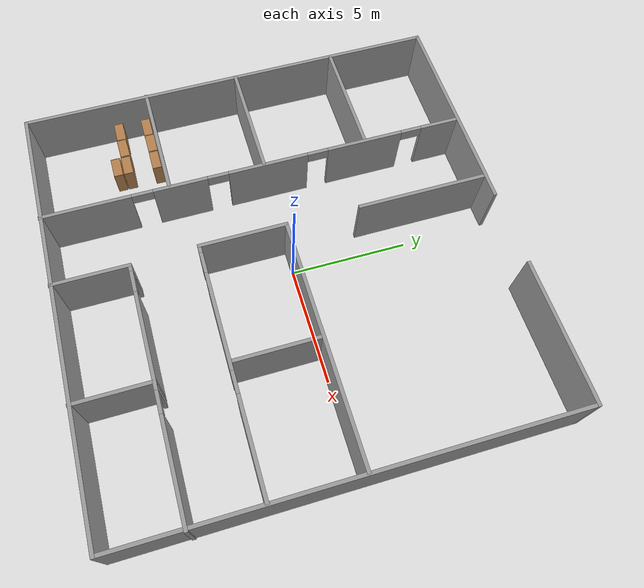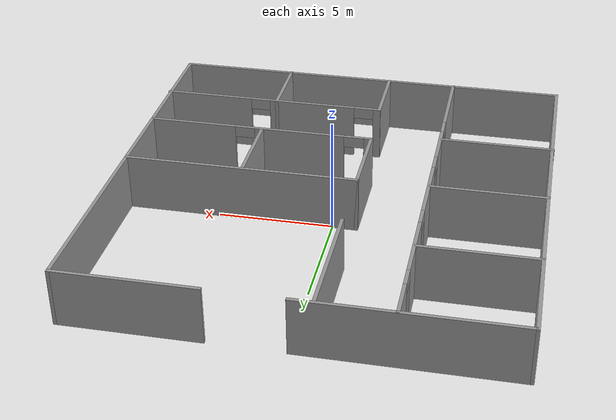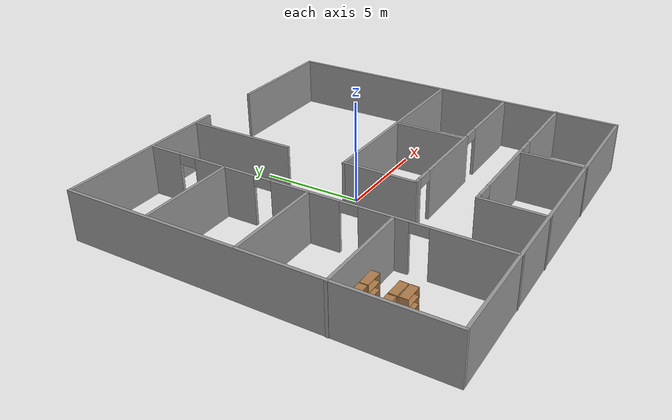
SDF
<sdf version="1.7">
 <world name="default">
  <model name="Clinic_Plan">
   <pose>0.061971 -0.423172 0 0 -0 0</pose>
   <link name="Wall_11">
    <pose>-4.13749 -0.011198 0 0 -0 -1.5708</pose>
    <visual name="Wall_11_Visual_0">
     <pose>-8.24062 0 1.25 0 -0 0</pose>
     <geometry><box><size>1.76876 0.15 2.5</size></box></geometry>
     <material>
      <script><uri>file://media/materials/scripts/gazebo.material</uri><name>Gazebo/Grey</name></script>
      <ambient>1 1 1 1</ambient>
     </material>
     <meta><layer>0</layer></meta>
    </visual>
    <collision name="Wall_11_Collision_0">
     <geometry><box><size>1.76876 0.15 2.5</size></box></geometry>
     <pose>-8.24062 0 1.25 0 -0 0</pose>
    </collision>
    <visual name="Wall_11_Visual_1">
     <pose>-4.80135 0 1.25 0 -0 0</pose>
     <geometry><box><size>3.30977 0.15 2.5</size></box></geometry>
     <material>
      <script><uri>file://media/materials/scripts/gazebo.material</uri><name>Gazebo/Grey</name></script>
      <ambient>1 1 1 1</ambient>
     </material>
     <meta><layer>0</layer></meta>
    </visual>
    <collision name="Wall_11_Collision_1">
     <geometry><box><size>3.30977 0.15 2.5</size></box></geometry>
     <pose>-4.80135 0 1.25 0 -0 0</pose>
    </collision>
    <visual name="Wall_11_Visual_2">
     <pose>-0.522188 0 1.25 0 -0 0</pose>
     <geometry><box><size>3.44855 0.15 2.5</size></box></geometry>
     <material>
      <script><uri>file://media/materials/scripts/gazebo.material</uri><name>Gazebo/Grey</name></script>
      <ambient>1 1 1 1</ambient>
     </material>
     <meta><layer>0</layer></meta>
    </visual>
    <collision name="Wall_11_Collision_2">
     <geometry><box><size>3.44855 0.15 2.5</size></box></geometry>
     <pose>-0.522188 0 1.25 0 -0 0</pose>
    </collision>
    <visual name="Wall_11_Visual_3">
     <pose>3.25967 0 1.25 0 -0 0</pose>
     <geometry><box><size>2.31515 0.15 2.5</size></box></geometry>
     <material>
      <script><uri>file://media/materials/scripts/gazebo.material</uri><name>Gazebo/Grey</name></script>
      <ambient>1 1 1 1</ambient>
     </material>
     <meta><layer>0</layer></meta>
    </visual>
    <collision name="Wall_11_Collision_3">
     <geometry><box><size>2.31515 0.15 2.5</size></box></geometry>
     <pose>3.25967 0 1.25 0 -0 0</pose>
    </collision>
    <visual name="Wall_11_Visual_4">
     <pose>7.22112 0 1.25 0 -0 0</pose>
     <geometry><box><size>3.80776 0.15 2.5</size></box></geometry>
     <material>
      <script><uri>file://media/materials/scripts/gazebo.material</uri><name>Gazebo/Grey</name></script>
      <ambient>1 1 1 1</ambient>
     </material>
     <meta><layer>0</layer></meta>
    </visual>
    <collision name="Wall_11_Collision_4">
     <geometry><box><size>3.80776 0.15 2.5</size></box></geometry>
     <pose>7.22112 0 1.25 0 -0 0</pose>
    </collision>
    <visual name="Wall_11_Visual_5">
     <pose>-6.90624 0 2.25 0 -0 0</pose>
     <geometry><box><size>0.9 0.15 0.5</size></box></geometry>
     <material>
      <script><uri>file://media/materials/scripts/gazebo.material</uri><name>Gazebo/Grey</name></script>
      <ambient>1 1 1 1</ambient>
     </material>
     <meta><layer>0</layer></meta>
    </visual>
    <collision name="Wall_11_Collision_5">
     <geometry><box><size>0.9 0.15 0.5</size></box></geometry>
     <pose>-6.90624 0 2.25 0 -0 0</pose>
    </collision>
    <visual name="Wall_11_Visual_6">
     <pose>-2.69646 0 2.25 0 -0 0</pose>
     <geometry><box><size>0.9 0.15 0.5</size></box></geometry>
     <material>
      <script><uri>file://media/materials/scripts/gazebo.material</uri><name>Gazebo/Grey</name></script>
      <ambient>1 1 1 1</ambient>
     </material>
     <meta><layer>0</layer></meta>
    </visual>
    <collision name="Wall_11_Collision_6">
     <geometry><box><size>0.9 0.15 0.5</size></box></geometry>
     <pose>-2.69646 0 2.25 0 -0 0</pose>
    </collision>
    <visual name="Wall_11_Visual_7">
     <pose>1.65209 0 2.25 0 -0 0</pose>
     <geometry><box><size>0.9 0.15 0.5</size></box></geometry>
     <material>
      <script><uri>file://media/materials/scripts/gazebo.material</uri><name>Gazebo/Grey</name></script>
      <ambient>1 1 1 1</ambient>
     </material>
     <meta><layer>0</layer></meta>
    </visual>
    <collision name="Wall_11_Collision_7">
     <geometry><box><size>0.9 0.15 0.5</size></box></geometry>
     <pose>1.65209 0 2.25 0 -0 0</pose>
    </collision>
    <visual name="Wall_11_Visual_8">
     <pose>4.86724 0 2.25 0 -0 0</pose>
     <geometry><box><size>0.9 0.15 0.5</size></box></geometry>
     <material>
      <script><uri>file://media/materials/scripts/gazebo.material</uri><name>Gazebo/Grey</name></script>
      <ambient>1 1 1 1</ambient>
     </material>
     <meta><layer>0</layer></meta>
    </visual>
    <collision name="Wall_11_Collision_8">
     <geometry><box><size>0.9 0.15 0.5</size></box></geometry>
     <pose>4.86724 0 2.25 0 -0 0</pose>
    </collision>
   </link>
   <link name="Wall_15">
    <collision name="Wall_15_Collision">
     <geometry><box><size>5 0.15 2.5</size></box></geometry>
     <pose>0 0 1.25 0 -0 0</pose>
    </collision>
    <visual name="Wall_15_Visual">
     <pose>0 0 1.25 0 -0 0</pose>
     <geometry><box><size>5 0.15 2.5</size></box></geometry>
     <material>
      <script><uri>file://media/materials/scripts/gazebo.material</uri><name>Gazebo/Grey</name></script>
      <ambient>1 1 1 1</ambient>
     </material>
     <meta><layer>0</layer></meta>
    </visual>
    <pose>-6.62954 4.79703 0 0 -0 0</pose>
   </link>
   <link name="Wall_17">
    <collision name="Wall_17_Collision">
     <geometry><box><size>5 0.15 2.5</size></box></geometry>
     <pose>0 0 1.25 0 -0 0</pose>
    </collision>
    <visual name="Wall_17_Visual">
     <pose>0 0 1.25 0 -0 0</pose>
     <geometry><box><size>5 0.15 2.5</size></box></geometry>
     <material>
      <script><uri>file://media/materials/scripts/gazebo.material</uri><name>Gazebo/Grey</name></script>
      <ambient>1 1 1 1</ambient>
     </material>
     <meta><layer>0</layer></meta>
    </visual>
    <pose>-6.62954 0.330853 0 0 -0 0</pose>
   </link>
   <link name="Wall_19">
    <collision name="Wall_19_Collision">
     <geometry><box><size>5 0.15 2.5</size></box></geometry>
     <pose>0 0 1.25 0 -0 0</pose>
    </collision>
    <visual name="Wall_19_Visual">
     <pose>0 0 1.25 0 -0 0</pose>
     <geometry><box><size>5 0.15 2.5</size></box></geometry>
     <material>
      <script><uri>file://media/materials/scripts/gazebo.material</uri><name>Gazebo/Grey</name></script>
      <ambient>1 1 1 1</ambient>
     </material>
     <meta><layer>0</layer></meta>
    </visual>
    <pose>-6.66013 -3.73765 0 0 -0 0</pose>
   </link>
   <link name="Wall_22">
    <collision name="Wall_22_Collision">
     <geometry><box><size>3.25 0.15 2.5</size></box></geometry>
     <pose>0 0 1.25 0 -0 0</pose>
    </collision>
    <visual name="Wall_22_Visual">
     <pose>0 0 1.25 0 -0 0</pose>
     <geometry><box><size>3.25 0.15 2.5</size></box></geometry>
     <material>
      <script><uri>file://media/materials/scripts/gazebo.material</uri><name>Gazebo/Grey</name></script>
      <ambient>1 1 1 1</ambient>
     </material>
     <meta><layer>0</layer></meta>
    </visual>
    <pose>-1.0264 -7.51474 0 0 -0 1.5708</pose>
   </link>
   <link name="Wall_3">
    <collision name="Wall_3_Collision">
     <geometry><box><size>18.25 0.15 2.5</size></box></geometry>
     <pose>0 0 1.25 0 -0 0</pose>
    </collision>
    <visual name="Wall_3_Visual">
     <pose>0 0 1.25 0 -0 0</pose>
     <geometry><box><size>18.25 0.15 2.5</size></box></geometry>
     <material>
      <script><uri>file://media/materials/scripts/gazebo.material</uri><name>Gazebo/Grey</name></script>
      <ambient>1 1 1 1</ambient>
     </material>
     <meta><layer>0</layer></meta>
    </visual>
    <pose>-9.0597 0.014737 0 0 -0 -1.5708</pose>
   </link>
   <link name="Wall_32">
    <pose>4.03513 -5.96146 0 0 -0 0</pose>
    <visual name="Wall_32_Visual_0">
     <pose>-4.9534 0 1.25 0 -0 0</pose>
     <geometry><box><size>0.343205 0.15 2.5</size></box></geometry>
     <material>
      <script><uri>file://media/materials/scripts/gazebo.material</uri><name>Gazebo/Grey</name></script>
      <ambient>1 1 1 1</ambient>
     </material>
     <meta><layer>0</layer></meta>
    </visual>
    <collision name="Wall_32_Collision_0">
     <geometry><box><size>0.343205 0.15 2.5</size></box></geometry>
     <pose>-4.9534 0 1.25 0 -0 0</pose>
    </collision>
    <visual name="Wall_32_Visual_1">
     <pose>-1.87128 0 1.25 0 -0 0</pose>
     <geometry><box><size>4.02104 0.15 2.5</size></box></geometry>
     <material>
      <script><uri>file://media/materials/scripts/gazebo.material</uri><name>Gazebo/Grey</name></script>
      <ambient>1 1 1 1</ambient>
     </material>
     <meta><layer>0</layer></meta>
    </visual>
    <collision name="Wall_32_Collision_1">
     <geometry><box><size>4.02104 0.15 2.5</size></box></geometry>
     <pose>-1.87128 0 1.25 0 -0 0</pose>
    </collision>
    <visual name="Wall_32_Visual_2">
     <pose>3.08212 0 1.25 0 -0 0</pose>
     <geometry><box><size>4.08576 0.15 2.5</size></box></geometry>
     <material>
      <script><uri>file://media/materials/scripts/gazebo.material</uri><name>Gazebo/Grey</name></script>
      <ambient>1 1 1 1</ambient>
     </material>
     <meta><layer>0</layer></meta>
    </visual>
    <collision name="Wall_32_Collision_2">
     <geometry><box><size>4.08576 0.15 2.5</size></box></geometry>
     <pose>3.08212 0 1.25 0 -0 0</pose>
    </collision>
    <visual name="Wall_32_Visual_3">
     <pose>-4.33179 0 2.25 0 -0 0</pose>
     <geometry><box><size>0.9 0.15 0.5</size></box></geometry>
     <material>
      <script><uri>file://media/materials/scripts/gazebo.material</uri><name>Gazebo/Grey</name></script>
      <ambient>1 1 1 1</ambient>
     </material>
     <meta><layer>0</layer></meta>
    </visual>
    <collision name="Wall_32_Collision_3">
     <geometry><box><size>0.9 0.15 0.5</size></box></geometry>
     <pose>-4.33179 0 2.25 0 -0 0</pose>
    </collision>
    <visual name="Wall_32_Visual_4">
     <pose>0.589242 0 2.25 0 -0 0</pose>
     <geometry><box><size>0.9 0.15 0.5</size></box></geometry>
     <material>
      <script><uri>file://media/materials/scripts/gazebo.material</uri><name>Gazebo/Grey</name></script>
      <ambient>1 1 1 1</ambient>
     </material>
     <meta><layer>0</layer></meta>
    </visual>
    <collision name="Wall_32_Collision_4">
     <geometry><box><size>0.9 0.15 0.5</size></box></geometry>
     <pose>0.589242 0 2.25 0 -0 0</pose>
    </collision>
   </link>
   <link name="Wall_34">
    <pose>3.93681 -3.16844 0 0 -0 3.14159</pose>
    <visual name="Wall_34_Visual_0">
     <pose>-3.15181 0 1.25 0 -0 0</pose>
     <geometry><box><size>3.94638 0.15 2.5</size></box></geometry>
     <material>
      <script><uri>file://media/materials/scripts/gazebo.material</uri><name>Gazebo/Grey</name></script>
      <ambient>1 1 1 1</ambient>
     </material>
     <meta><layer>0</layer></meta>
    </visual>
    <collision name="Wall_34_Collision_0">
     <geometry><box><size>3.94638 0.15 2.5</size></box></geometry>
     <pose>-3.15181 0 1.25 0 -0 0</pose>
    </collision>
    <visual name="Wall_34_Visual_1">
     <pose>1.77322 0 1.25 0 -0 0</pose>
     <geometry><box><size>4.10368 0.15 2.5</size></box></geometry>
     <material>
      <script><uri>file://media/materials/scripts/gazebo.material</uri><name>Gazebo/Grey</name></script>
      <ambient>1 1 1 1</ambient>
     </material>
     <meta><layer>0</layer></meta>
    </visual>
    <collision name="Wall_34_Collision_1">
     <geometry><box><size>4.10368 0.15 2.5</size></box></geometry>
     <pose>1.77322 0 1.25 0 -0 0</pose>
    </collision>
    <visual name="Wall_34_Visual_2">
     <pose>4.92503 0 1.25 0 -0 0</pose>
     <geometry><box><size>0.399938 0.15 2.5</size></box></geometry>
     <material>
      <script><uri>file://media/materials/scripts/gazebo.material</uri><name>Gazebo/Grey</name></script>
      <ambient>1 1 1 1</ambient>
     </material>
     <meta><layer>0</layer></meta>
    </visual>
    <collision name="Wall_34_Collision_2">
     <geometry><box><size>0.399938 0.15 2.5</size></box></geometry>
     <pose>4.92503 0 1.25 0 -0 0</pose>
    </collision>
    <visual name="Wall_34_Visual_3">
     <pose>-0.728617 0 2.25 0 -0 0</pose>
     <geometry><box><size>0.9 0.15 0.5</size></box></geometry>
     <material>
      <script><uri>file://media/materials/scripts/gazebo.material</uri><name>Gazebo/Grey</name></script>
      <ambient>1 1 1 1</ambient>
     </material>
     <meta><layer>0</layer></meta>
    </visual>
    <collision name="Wall_34_Collision_3">
     <geometry><box><size>0.9 0.15 0.5</size></box></geometry>
     <pose>-0.728617 0 2.25 0 -0 0</pose>
    </collision>
    <visual name="Wall_34_Visual_4">
     <pose>4.27506 0 2.25 0 -0 0</pose>
     <geometry><box><size>0.9 0.15 0.5</size></box></geometry>
     <material>
      <script><uri>file://media/materials/scripts/gazebo.material</uri><name>Gazebo/Grey</name></script>
      <ambient>1 1 1 1</ambient>
     </material>
     <meta><layer>0</layer></meta>
    </visual>
    <collision name="Wall_34_Collision_4">
     <geometry><box><size>0.9 0.15 0.5</size></box></geometry>
     <pose>4.27506 0 2.25 0 -0 0</pose>
    </collision>
   </link>
   <link name="Wall_36">
    <collision name="Wall_36_Collision">
     <geometry><box><size>3.25 0.15 2.5</size></box></geometry>
     <pose>0 0 1.25 0 -0 0</pose>
    </collision>
    <visual name="Wall_36_Visual">
     <pose>0 0 1.25 0 -0 0</pose>
     <geometry><box><size>3.25 0.15 2.5</size></box></geometry>
     <material>
      <script><uri>file://media/materials/scripts/gazebo.material</uri><name>Gazebo/Grey</name></script>
      <ambient>1 1 1 1</ambient>
     </material>
     <meta><layer>0</layer></meta>
    </visual>
    <pose>3.84891 -7.50761 0 0 -0 -1.5708</pose>
   </link>
   <link name="Wall_38">
    <collision name="Wall_38_Collision">
     <geometry><box><size>10.25 0.15 2.5</size></box></geometry>
     <pose>0 0 1.25 0 -0 0</pose>
    </collision>
    <visual name="Wall_38_Visual">
     <pose>0 0 1.25 0 -0 0</pose>
     <geometry><box><size>10.25 0.15 2.5</size></box></geometry>
     <material>
      <script><uri>file://media/materials/scripts/gazebo.material</uri><name>Gazebo/Grey</name></script>
      <ambient>1 1 1 1</ambient>
     </material>
     <meta><layer>0</layer></meta>
    </visual>
    <pose>3.93681 0.431559 0 0 -0 0</pose>
   </link>
   <link name="Wall_40">
    <collision name="Wall_40_Collision">
     <geometry><box><size>3.5 0.15 2.5</size></box></geometry>
     <pose>0 0 1.25 0 -0 0</pose>
    </collision>
    <visual name="Wall_40_Visual">
     <pose>0 0 1.25 0 -0 0</pose>
     <geometry><box><size>3.5 0.15 2.5</size></box></geometry>
     <material>
      <script><uri>file://media/materials/scripts/gazebo.material</uri><name>Gazebo/Grey</name></script>
      <ambient>1 1 1 1</ambient>
     </material>
     <meta><layer>0</layer></meta>
    </visual>
    <pose>3.87146 -1.3505 0 0 -0 1.5708</pose>
   </link>
   <link name="Wall_43">
    <collision name="Wall_43_Collision">
     <geometry><box><size>3.75 0.15 2.5</size></box></geometry>
     <pose>0 0 1.25 0 -0 0</pose>
    </collision>
    <visual name="Wall_43_Visual">
     <pose>0 0 1.25 0 -0 0</pose>
     <geometry><box><size>3.75 0.15 2.5</size></box></geometry>
     <material>
      <script><uri>file://media/materials/scripts/gazebo.material</uri><name>Gazebo/Grey</name></script>
      <ambient>1 1 1 1</ambient>
     </material>
     <meta><layer>0</layer></meta>
    </visual>
    <pose>-1.11319 -1.36844 0 0 -0 -1.5708</pose>
   </link>
   <link name="Wall_46">
    <collision name="Wall_46_Collision">
     <geometry><box><size>5.5 0.15 2.5</size></box></geometry>
     <pose>0 0 1.25 0 -0 0</pose>
    </collision>
    <visual name="Wall_46_Visual">
     <pose>0 0 1.25 0 -0 0</pose>
     <geometry><box><size>5.5 0.15 2.5</size></box></geometry>
     <material>
      <script><uri>file://media/materials/scripts/gazebo.material</uri><name>Gazebo/Grey</name></script>
      <ambient>1 1 1 1</ambient>
     </material>
     <meta><layer>0</layer></meta>
    </visual>
    <pose>-1.07436 6.24221 0 0 -0 1.5708</pose>
   </link>
   <link name="Wall_48">
    <collision name="Wall_48_Collision">
     <geometry><box><size>6 0.15 2.5</size></box></geometry>
     <pose>0 0 1.25 0 -0 0</pose>
    </collision>
    <visual name="Wall_48_Visual">
     <pose>0 0 1.25 0 -0 0</pose>
     <geometry><box><size>6 0.15 2.5</size></box></geometry>
     <material>
      <script><uri>file://media/materials/scripts/gazebo.material</uri><name>Gazebo/Grey</name></script>
      <ambient>1 1 1 1</ambient>
     </material>
     <meta><layer>0</layer></meta>
    </visual>
    <pose>6.1153 9.06474 0 0 -0 3.14159</pose>
   </link>
   <link name="Wall_5">
    <collision name="Wall_5_Collision">
     <geometry><box><size>18.25 0.15 2.5</size></box></geometry>
     <pose>0 0 1.25 0 -0 0</pose>
    </collision>
    <visual name="Wall_5_Visual">
     <pose>0 0 1.25 0 -0 0</pose>
     <geometry><box><size>18.25 0.15 2.5</size></box></geometry>
     <material>
      <script><uri>file://media/materials/scripts/gazebo.material</uri><name>Gazebo/Grey</name></script>
      <ambient>1 1 1 1</ambient>
     </material>
     <meta><layer>0</layer></meta>
    </visual>
    <pose>-0.0097 -9.03526 0 0 -0 0</pose>
   </link>
   <link name="Wall_50">
    <collision name="Wall_50_Collision">
     <geometry><box><size>9 0.15 2.5</size></box></geometry>
     <pose>0 0 1.25 0 -0 0</pose>
    </collision>
    <visual name="Wall_50_Visual">
     <pose>0 0 1.25 0 -0 0</pose>
     <geometry><box><size>9 0.15 2.5</size></box></geometry>
     <material>
      <script><uri>file://media/materials/scripts/gazebo.material</uri><name>Gazebo/Grey</name></script>
      <ambient>1 1 1 1</ambient>
     </material>
     <meta><layer>0</layer></meta>
    </visual>
    <pose>-4.56024 9.06375 0 0 -0 3.14159</pose>
   </link>
   <link name="Wall_6">
    <collision name="Wall_6_Collision">
     <geometry><box><size>18.25 0.15 2.5</size></box></geometry>
     <pose>0 0 1.25 0 -0 0</pose>
    </collision>
    <visual name="Wall_6_Visual">
     <pose>0 0 1.25 0 -0 0</pose>
     <geometry><box><size>18.25 0.15 2.5</size></box></geometry>
     <material>
      <script><uri>file://media/materials/scripts/gazebo.material</uri><name>Gazebo/Grey</name></script>
      <ambient>1 1 1 1</ambient>
     </material>
     <meta><layer>0</layer></meta>
    </visual>
    <pose>9.0403 0.014737 0 0 -0 1.5708</pose>
   </link>
   <static>1</static>
  </model>
  <model name="bookshelf">
   <static>1</static>
   <link name="link">
    <inertial><mass>1</mass></inertial>
    <collision name="back">
     <pose>0 0.005 0.6 0 -0 0</pose>
     <geometry><box><size>0.9 0.01 1.2</size></box></geometry>
    </collision>
    <visual name="visual1">
     <pose>0 0.005 0.6 0 -0 0</pose>
     <geometry><box><size>0.9 0.01 1.2</size></box></geometry>
     <material>
      <script><uri>file://media/materials/scripts/gazebo.material</uri><name>Gazebo/Wood</name></script>
     </material>
    </visual>
    <collision name="left_side">
     <pose>0.45 -0.195 0.6 0 -0 0</pose>
     <geometry><box><size>0.02 0.4 1.2</size></box></geometry>
    </collision>
    <visual name="visual2">
     <pose>0.45 -0.195 0.6 0 -0 0</pose>
     <geometry><box><size>0.02 0.4 1.2</size></box></geometry>
     <material>
      <script><uri>file://media/materials/scripts/gazebo.material</uri><name>Gazebo/Wood</name></script>
     </material>
    </visual>
    <collision name="right_side">
     <pose>-0.45 -0.195 0.6 0 -0 0</pose>
     <geometry><box><size>0.02 0.4 1.2</size></box></geometry>
    </collision>
    <visual name="visual3">
     <pose>-0.45 -0.195 0.6 0 -0 0</pose>
     <geometry><box><size>0.02 0.4 1.2</size></box></geometry>
     <material>
      <script><uri>file://media/materials/scripts/gazebo.material</uri><name>Gazebo/Wood</name></script>
     </material>
    </visual>
    <collision name="bottom">
     <pose>0 -0.195 0.03 0 -0 0</pose>
     <geometry><box><size>0.88 0.4 0.06</size></box></geometry>
    </collision>
    <visual name="visual4">
     <pose>0 -0.195 0.03 0 -0 0</pose>
     <geometry><box><size>0.88 0.4 0.06</size></box></geometry>
     <material>
      <script><uri>file://media/materials/scripts/gazebo.material</uri><name>Gazebo/Wood</name></script>
     </material>
    </visual>
    <collision name="top">
     <pose>0 -0.195 1.19 0 -0 0</pose>
     <geometry><box><size>0.88 0.4 0.02</size></box></geometry>
    </collision>
    <visual name="visual5">
     <pose>0 -0.195 1.19 0 -0 0</pose>
     <geometry><box><size>0.88 0.4 0.02</size></box></geometry>
     <material>
      <script><uri>file://media/materials/scripts/gazebo.material</uri><name>Gazebo/Wood</name></script>
     </material>
    </visual>
    <collision name="low_shelf">
     <pose>0 -0.195 0.43 0 -0 0</pose>
     <geometry><box><size>0.88 0.4 0.02</size></box></geometry>
    </collision>
    <visual name="visual6">
     <pose>0 -0.195 0.43 0 -0 0</pose>
     <geometry><box><size>0.88 0.4 0.02</size></box></geometry>
     <material>
      <script><uri>file://media/materials/scripts/gazebo.material</uri><name>Gazebo/Wood</name></script>
     </material>
    </visual>
    <collision name="high_shelf">
     <pose>0 -0.195 0.8 0 -0 0</pose>
     <geometry><box><size>0.88 0.4 0.02</size></box></geometry>
    </collision>
    <visual name="visual7">
     <pose>0 -0.195 0.8 0 -0 0</pose>
     <geometry><box><size>0.88 0.4 0.02</size></box></geometry>
     <material>
      <script><uri>file://media/materials/scripts/gazebo.material</uri><name>Gazebo/Wood</name></script>
     </material>
    </visual>
   </link>
   <pose>-6.53627 -4.27883 0 0 -0 0</pose>
  </model>
  <model name="bookshelf_0">
   <static>1</static>
   <link name="link">
    <inertial><mass>1</mass></inertial>
    <collision name="back">
     <pose>0 0.005 0.6 0 -0 0</pose>
     <geometry><box><size>0.9 0.01 1.2</size></box></geometry>
    </collision>
    <visual name="visual1">
     <pose>0 0.005 0.6 0 -0 0</pose>
     <geometry><box><size>0.9 0.01 1.2</size></box></geometry>
     <material>
      <script><uri>file://media/materials/scripts/gazebo.material</uri><name>Gazebo/Wood</name></script>
     </material>
    </visual>
    <collision name="left_side">
     <pose>0.45 -0.195 0.6 0 -0 0</pose>
     <geometry><box><size>0.02 0.4 1.2</size></box></geometry>
    </collision>
    <visual name="visual2">
     <pose>0.45 -0.195 0.6 0 -0 0</pose>
     <geometry><box><size>0.02 0.4 1.2</size></box></geometry>
     <material>
      <script><uri>file://media/materials/scripts/gazebo.material</uri><name>Gazebo/Wood</name></script>
     </material>
    </visual>
    <collision name="right_side">
     <pose>-0.45 -0.195 0.6 0 -0 0</pose>
     <geometry><box><size>0.02 0.4 1.2</size></box></geometry>
    </collision>
    <visual name="visual3">
     <pose>-0.45 -0.195 0.6 0 -0 0</pose>
     <geometry><box><size>0.02 0.4 1.2</size></box></geometry>
     <material>
      <script><uri>file://media/materials/scripts/gazebo.material</uri><name>Gazebo/Wood</name></script>
     </material>
    </visual>
    <collision name="bottom">
     <pose>0 -0.195 0.03 0 -0 0</pose>
     <geometry><box><size>0.88 0.4 0.06</size></box></geometry>
    </collision>
    <visual name="visual4">
     <pose>0 -0.195 0.03 0 -0 0</pose>
     <geometry><box><size>0.88 0.4 0.06</size></box></geometry>
     <material>
      <script><uri>file://media/materials/scripts/gazebo.material</uri><name>Gazebo/Wood</name></script>
     </material>
    </visual>
    <collision name="top">
     <pose>0 -0.195 1.19 0 -0 0</pose>
     <geometry><box><size>0.88 0.4 0.02</size></box></geometry>
    </collision>
    <visual name="visual5">
     <pose>0 -0.195 1.19 0 -0 0</pose>
     <geometry><box><size>0.88 0.4 0.02</size></box></geometry>
     <material>
      <script><uri>file://media/materials/scripts/gazebo.material</uri><name>Gazebo/Wood</name></script>
     </material>
    </visual>
    <collision name="low_shelf">
     <pose>0 -0.195 0.43 0 -0 0</pose>
     <geometry><box><size>0.88 0.4 0.02</size></box></geometry>
    </collision>
    <visual name="visual6">
     <pose>0 -0.195 0.43 0 -0 0</pose>
     <geometry><box><size>0.88 0.4 0.02</size></box></geometry>
     <material>
      <script><uri>file://media/materials/scripts/gazebo.material</uri><name>Gazebo/Wood</name></script>
     </material>
    </visual>
    <collision name="high_shelf">
     <pose>0 -0.195 0.8 0 -0 0</pose>
     <geometry><box><size>0.88 0.4 0.02</size></box></geometry>
    </collision>
    <visual name="visual7">
     <pose>0 -0.195 0.8 0 -0 0</pose>
     <geometry><box><size>0.88 0.4 0.02</size></box></geometry>
     <material>
      <script><uri>file://media/materials/scripts/gazebo.material</uri><name>Gazebo/Wood</name></script>
     </material>
    </visual>
   </link>
   <pose>-7.47578 -4.27956 0 0 -0 0</pose>
  </model>
  <model name="bookshelf_1">
   <static>1</static>
   <link name="link">
    <inertial><mass>1</mass></inertial>
    <collision name="back">
     <pose>0 0.005 0.6 0 -0 0</pose>
     <geometry><box><size>0.9 0.01 1.2</size></box></geometry>
    </collision>
    <visual name="visual1">
     <pose>0 0.005 0.6 0 -0 0</pose>
     <geometry><box><size>0.9 0.01 1.2</size></box></geometry>
     <material>
      <script><uri>file://media/materials/scripts/gazebo.material</uri><name>Gazebo/Wood</name></script>
     </material>
    </visual>
    <collision name="left_side">
     <pose>0.45 -0.195 0.6 0 -0 0</pose>
     <geometry><box><size>0.02 0.4 1.2</size></box></geometry>
    </collision>
    <visual name="visual2">
     <pose>0.45 -0.195 0.6 0 -0 0</pose>
     <geometry><box><size>0.02 0.4 1.2</size></box></geometry>
     <material>
      <script><uri>file://media/materials/scripts/gazebo.material</uri><name>Gazebo/Wood</name></script>
     </material>
    </visual>
    <collision name="right_side">
     <pose>-0.45 -0.195 0.6 0 -0 0</pose>
     <geometry><box><size>0.02 0.4 1.2</size></box></geometry>
    </collision>
    <visual name="visual3">
     <pose>-0.45 -0.195 0.6 0 -0 0</pose>
     <geometry><box><size>0.02 0.4 1.2</size></box></geometry>
     <material>
      <script><uri>file://media/materials/scripts/gazebo.material</uri><name>Gazebo/Wood</name></script>
     </material>
    </visual>
    <collision name="bottom">
     <pose>0 -0.195 0.03 0 -0 0</pose>
     <geometry><box><size>0.88 0.4 0.06</size></box></geometry>
    </collision>
    <visual name="visual4">
     <pose>0 -0.195 0.03 0 -0 0</pose>
     <geometry><box><size>0.88 0.4 0.06</size></box></geometry>
     <material>
      <script><uri>file://media/materials/scripts/gazebo.material</uri><name>Gazebo/Wood</name></script>
     </material>
    </visual>
    <collision name="top">
     <pose>0 -0.195 1.19 0 -0 0</pose>
     <geometry><box><size>0.88 0.4 0.02</size></box></geometry>
    </collision>
    <visual name="visual5">
     <pose>0 -0.195 1.19 0 -0 0</pose>
     <geometry><box><size>0.88 0.4 0.02</size></box></geometry>
     <material>
      <script><uri>file://media/materials/scripts/gazebo.material</uri><name>Gazebo/Wood</name></script>
     </material>
    </visual>
    <collision name="low_shelf">
     <pose>0 -0.195 0.43 0 -0 0</pose>
     <geometry><box><size>0.88 0.4 0.02</size></box></geometry>
    </collision>
    <visual name="visual6">
     <pose>0 -0.195 0.43 0 -0 0</pose>
     <geometry><box><size>0.88 0.4 0.02</size></box></geometry>
     <material>
      <script><uri>file://media/materials/scripts/gazebo.material</uri><name>Gazebo/Wood</name></script>
     </material>
    </visual>
    <collision name="high_shelf">
     <pose>0 -0.195 0.8 0 -0 0</pose>
     <geometry><box><size>0.88 0.4 0.02</size></box></geometry>
    </collision>
    <visual name="visual7">
     <pose>0 -0.195 0.8 0 -0 0</pose>
     <geometry><box><size>0.88 0.4 0.02</size></box></geometry>
     <material>
      <script><uri>file://media/materials/scripts/gazebo.material</uri><name>Gazebo/Wood</name></script>
     </material>
    </visual>
   </link>
   <pose>-8.40078 -4.28984 0 0 -0 0</pose>
  </model>
  <model name="bookshelf_4">
   <static>1</static>
   <link name="link">
    <inertial><mass>1</mass></inertial>
    <collision name="back">
     <pose>0 0.005 0.6 0 -0 0</pose>
     <geometry><box><size>0.9 0.01 1.2</size></box></geometry>
    </collision>
    <visual name="visual1">
     <pose>0 0.005 0.6 0 -0 0</pose>
     <geometry><box><size>0.9 0.01 1.2</size></box></geometry>
     <material>
      <script><uri>file://media/materials/scripts/gazebo.material</uri><name>Gazebo/Wood</name></script>
     </material>
    </visual>
    <collision name="left_side">
     <pose>0.45 -0.195 0.6 0 -0 0</pose>
     <geometry><box><size>0.02 0.4 1.2</size></box></geometry>
    </collision>
    <visual name="visual2">
     <pose>0.45 -0.195 0.6 0 -0 0</pose>
     <geometry><box><size>0.02 0.4 1.2</size></box></geometry>
     <material>
      <script><uri>file://media/materials/scripts/gazebo.material</uri><name>Gazebo/Wood</name></script>
     </material>
    </visual>
    <collision name="right_side">
     <pose>-0.45 -0.195 0.6 0 -0 0</pose>
     <geometry><box><size>0.02 0.4 1.2</size></box></geometry>
    </collision>
    <visual name="visual3">
     <pose>-0.45 -0.195 0.6 0 -0 0</pose>
     <geometry><box><size>0.02 0.4 1.2</size></box></geometry>
     <material>
      <script><uri>file://media/materials/scripts/gazebo.material</uri><name>Gazebo/Wood</name></script>
     </material>
    </visual>
    <collision name="bottom">
     <pose>0 -0.195 0.03 0 -0 0</pose>
     <geometry><box><size>0.88 0.4 0.06</size></box></geometry>
    </collision>
    <visual name="visual4">
     <pose>0 -0.195 0.03 0 -0 0</pose>
     <geometry><box><size>0.88 0.4 0.06</size></box></geometry>
     <material>
      <script><uri>file://media/materials/scripts/gazebo.material</uri><name>Gazebo/Wood</name></script>
     </material>
    </visual>
    <collision name="top">
     <pose>0 -0.195 1.19 0 -0 0</pose>
     <geometry><box><size>0.88 0.4 0.02</size></box></geometry>
    </collision>
    <visual name="visual5">
     <pose>0 -0.195 1.19 0 -0 0</pose>
     <geometry><box><size>0.88 0.4 0.02</size></box></geometry>
     <material>
      <script><uri>file://media/materials/scripts/gazebo.material</uri><name>Gazebo/Wood</name></script>
     </material>
    </visual>
    <collision name="low_shelf">
     <pose>0 -0.195 0.43 0 -0 0</pose>
     <geometry><box><size>0.88 0.4 0.02</size></box></geometry>
    </collision>
    <visual name="visual6">
     <pose>0 -0.195 0.43 0 -0 0</pose>
     <geometry><box><size>0.88 0.4 0.02</size></box></geometry>
     <material>
      <script><uri>file://media/materials/scripts/gazebo.material</uri><name>Gazebo/Wood</name></script>
     </material>
    </visual>
    <collision name="high_shelf">
     <pose>0 -0.195 0.8 0 -0 0</pose>
     <geometry><box><size>0.88 0.4 0.02</size></box></geometry>
    </collision>
    <visual name="visual7">
     <pose>0 -0.195 0.8 0 -0 0</pose>
     <geometry><box><size>0.88 0.4 0.02</size></box></geometry>
     <material>
      <script><uri>file://media/materials/scripts/gazebo.material</uri><name>Gazebo/Wood</name></script>
     </material>
    </visual>
   </link>
   <pose>-6.59095 -5.98674 0 0 -0 0</pose>
  </model>
  <model name="bookshelf_8">
   <static>1</static>
   <link name="link">
    <inertial><mass>1</mass></inertial>
    <collision name="back">
     <pose>0 0.005 0.6 0 -0 0</pose>
     <geometry><box><size>0.9 0.01 1.2</size></box></geometry>
    </collision>
    <visual name="visual1">
     <pose>0 0.005 0.6 0 -0 0</pose>
     <geometry><box><size>0.9 0.01 1.2</size></box></geometry>
     <material>
      <script><uri>file://media/materials/scripts/gazebo.material</uri><name>Gazebo/Wood</name></script>
     </material>
    </visual>
    <collision name="left_side">
     <pose>0.45 -0.195 0.6 0 -0 0</pose>
     <geometry><box><size>0.02 0.4 1.2</size></box></geometry>
    </collision>
    <visual name="visual2">
     <pose>0.45 -0.195 0.6 0 -0 0</pose>
     <geometry><box><size>0.02 0.4 1.2</size></box></geometry>
     <material>
      <script><uri>file://media/materials/scripts/gazebo.material</uri><name>Gazebo/Wood</name></script>
     </material>
    </visual>
    <collision name="right_side">
     <pose>-0.45 -0.195 0.6 0 -0 0</pose>
     <geometry><box><size>0.02 0.4 1.2</size></box></geometry>
    </collision>
    <visual name="visual3">
     <pose>-0.45 -0.195 0.6 0 -0 0</pose>
     <geometry><box><size>0.02 0.4 1.2</size></box></geometry>
     <material>
      <script><uri>file://media/materials/scripts/gazebo.material</uri><name>Gazebo/Wood</name></script>
     </material>
    </visual>
    <collision name="bottom">
     <pose>0 -0.195 0.03 0 -0 0</pose>
     <geometry><box><size>0.88 0.4 0.06</size></box></geometry>
    </collision>
    <visual name="visual4">
     <pose>0 -0.195 0.03 0 -0 0</pose>
     <geometry><box><size>0.88 0.4 0.06</size></box></geometry>
     <material>
      <script><uri>file://media/materials/scripts/gazebo.material</uri><name>Gazebo/Wood</name></script>
     </material>
    </visual>
    <collision name="top">
     <pose>0 -0.195 1.19 0 -0 0</pose>
     <geometry><box><size>0.88 0.4 0.02</size></box></geometry>
    </collision>
    <visual name="visual5">
     <pose>0 -0.195 1.19 0 -0 0</pose>
     <geometry><box><size>0.88 0.4 0.02</size></box></geometry>
     <material>
      <script><uri>file://media/materials/scripts/gazebo.material</uri><name>Gazebo/Wood</name></script>
     </material>
    </visual>
    <collision name="low_shelf">
     <pose>0 -0.195 0.43 0 -0 0</pose>
     <geometry><box><size>0.88 0.4 0.02</size></box></geometry>
    </collision>
    <visual name="visual6">
     <pose>0 -0.195 0.43 0 -0 0</pose>
     <geometry><box><size>0.88 0.4 0.02</size></box></geometry>
     <material>
      <script><uri>file://media/materials/scripts/gazebo.material</uri><name>Gazebo/Wood</name></script>
     </material>
    </visual>
    <collision name="high_shelf">
     <pose>0 -0.195 0.8 0 -0 0</pose>
     <geometry><box><size>0.88 0.4 0.02</size></box></geometry>
    </collision>
    <visual name="visual7">
     <pose>0 -0.195 0.8 0 -0 0</pose>
     <geometry><box><size>0.88 0.4 0.02</size></box></geometry>
     <material>
      <script><uri>file://media/materials/scripts/gazebo.material</uri><name>Gazebo/Wood</name></script>
     </material>
    </visual>
   </link>
   <pose>-6.59153 -5.92618 0 0 -0 3.12455</pose>
  </model>
  <model name="bookshelf_9">
   <static>1</static>
   <link name="link">
    <inertial><mass>1</mass></inertial>
    <collision name="back">
     <pose>0 0.005 0.6 0 -0 0</pose>
     <geometry><box><size>0.9 0.01 1.2</size></box></geometry>
    </collision>
    <visual name="visual1">
     <pose>0 0.005 0.6 0 -0 0</pose>
     <geometry><box><size>0.9 0.01 1.2</size></box></geometry>
     <material>
      <script><uri>file://media/materials/scripts/gazebo.material</uri><name>Gazebo/Wood</name></script>
     </material>
    </visual>
    <collision name="left_side">
     <pose>0.45 -0.195 0.6 0 -0 0</pose>
     <geometry><box><size>0.02 0.4 1.2</size></box></geometry>
    </collision>
    <visual name="visual2">
     <pose>0.45 -0.195 0.6 0 -0 0</pose>
     <geometry><box><size>0.02 0.4 1.2</size></box></geometry>
     <material>
      <script><uri>file://media/materials/scripts/gazebo.material</uri><name>Gazebo/Wood</name></script>
     </material>
    </visual>
    <collision name="right_side">
     <pose>-0.45 -0.195 0.6 0 -0 0</pose>
     <geometry><box><size>0.02 0.4 1.2</size></box></geometry>
    </collision>
    <visual name="visual3">
     <pose>-0.45 -0.195 0.6 0 -0 0</pose>
     <geometry><box><size>0.02 0.4 1.2</size></box></geometry>
     <material>
      <script><uri>file://media/materials/scripts/gazebo.material</uri><name>Gazebo/Wood</name></script>
     </material>
    </visual>
    <collision name="bottom">
     <pose>0 -0.195 0.03 0 -0 0</pose>
     <geometry><box><size>0.88 0.4 0.06</size></box></geometry>
    </collision>
    <visual name="visual4">
     <pose>0 -0.195 0.03 0 -0 0</pose>
     <geometry><box><size>0.88 0.4 0.06</size></box></geometry>
     <material>
      <script><uri>file://media/materials/scripts/gazebo.material</uri><name>Gazebo/Wood</name></script>
     </material>
    </visual>
    <collision name="top">
     <pose>0 -0.195 1.19 0 -0 0</pose>
     <geometry><box><size>0.88 0.4 0.02</size></box></geometry>
    </collision>
    <visual name="visual5">
     <pose>0 -0.195 1.19 0 -0 0</pose>
     <geometry><box><size>0.88 0.4 0.02</size></box></geometry>
     <material>
      <script><uri>file://media/materials/scripts/gazebo.material</uri><name>Gazebo/Wood</name></script>
     </material>
    </visual>
    <collision name="low_shelf">
     <pose>0 -0.195 0.43 0 -0 0</pose>
     <geometry><box><size>0.88 0.4 0.02</size></box></geometry>
    </collision>
    <visual name="visual6">
     <pose>0 -0.195 0.43 0 -0 0</pose>
     <geometry><box><size>0.88 0.4 0.02</size></box></geometry>
     <material>
      <script><uri>file://media/materials/scripts/gazebo.material</uri><name>Gazebo/Wood</name></script>
     </material>
    </visual>
    <collision name="high_shelf">
     <pose>0 -0.195 0.8 0 -0 0</pose>
     <geometry><box><size>0.88 0.4 0.02</size></box></geometry>
    </collision>
    <visual name="visual7">
     <pose>0 -0.195 0.8 0 -0 0</pose>
     <geometry><box><size>0.88 0.4 0.02</size></box></geometry>
     <material>
      <script><uri>file://media/materials/scripts/gazebo.material</uri><name>Gazebo/Wood</name></script>
     </material>
    </visual>
   </link>
   <pose>-7.53023 -5.92154 0 0 0 -3.12005</pose>
  </model>
  <model name="bookshelf_10">
   <static>1</static>
   <link name="link">
    <inertial><mass>1</mass></inertial>
    <collision name="back">
     <pose>0 0.005 0.6 0 -0 0</pose>
     <geometry><box><size>0.9 0.01 1.2</size></box></geometry>
    </collision>
    <visual name="visual1">
     <pose>0 0.005 0.6 0 -0 0</pose>
     <geometry><box><size>0.9 0.01 1.2</size></box></geometry>
     <material>
      <script><uri>file://media/materials/scripts/gazebo.material</uri><name>Gazebo/Wood</name></script>
     </material>
    </visual>
    <collision name="left_side">
     <pose>0.45 -0.195 0.6 0 -0 0</pose>
     <geometry><box><size>0.02 0.4 1.2</size></box></geometry>
    </collision>
    <visual name="visual2">
     <pose>0.45 -0.195 0.6 0 -0 0</pose>
     <geometry><box><size>0.02 0.4 1.2</size></box></geometry>
     <material>
      <script><uri>file://media/materials/scripts/gazebo.material</uri><name>Gazebo/Wood</name></script>
     </material>
    </visual>
    <collision name="right_side">
     <pose>-0.45 -0.195 0.6 0 -0 0</pose>
     <geometry><box><size>0.02 0.4 1.2</size></box></geometry>
    </collision>
    <visual name="visual3">
     <pose>-0.45 -0.195 0.6 0 -0 0</pose>
     <geometry><box><size>0.02 0.4 1.2</size></box></geometry>
     <material>
      <script><uri>file://media/materials/scripts/gazebo.material</uri><name>Gazebo/Wood</name></script>
     </material>
    </visual>
    <collision name="bottom">
     <pose>0 -0.195 0.03 0 -0 0</pose>
     <geometry><box><size>0.88 0.4 0.06</size></box></geometry>
    </collision>
    <visual name="visual4">
     <pose>0 -0.195 0.03 0 -0 0</pose>
     <geometry><box><size>0.88 0.4 0.06</size></box></geometry>
     <material>
      <script><uri>file://media/materials/scripts/gazebo.material</uri><name>Gazebo/Wood</name></script>
     </material>
    </visual>
    <collision name="top">
     <pose>0 -0.195 1.19 0 -0 0</pose>
     <geometry><box><size>0.88 0.4 0.02</size></box></geometry>
    </collision>
    <visual name="visual5">
     <pose>0 -0.195 1.19 0 -0 0</pose>
     <geometry><box><size>0.88 0.4 0.02</size></box></geometry>
     <material>
      <script><uri>file://media/materials/scripts/gazebo.material</uri><name>Gazebo/Wood</name></script>
     </material>
    </visual>
    <collision name="low_shelf">
     <pose>0 -0.195 0.43 0 -0 0</pose>
     <geometry><box><size>0.88 0.4 0.02</size></box></geometry>
    </collision>
    <visual name="visual6">
     <pose>0 -0.195 0.43 0 -0 0</pose>
     <geometry><box><size>0.88 0.4 0.02</size></box></geometry>
     <material>
      <script><uri>file://media/materials/scripts/gazebo.material</uri><name>Gazebo/Wood</name></script>
     </material>
    </visual>
    <collision name="high_shelf">
     <pose>0 -0.195 0.8 0 -0 0</pose>
     <geometry><box><size>0.88 0.4 0.02</size></box></geometry>
    </collision>
    <visual name="visual7">
     <pose>0 -0.195 0.8 0 -0 0</pose>
     <geometry><box><size>0.88 0.4 0.02</size></box></geometry>
     <material>
      <script><uri>file://media/materials/scripts/gazebo.material</uri><name>Gazebo/Wood</name></script>
     </material>
    </visual>
   </link>
   <pose>-8.46669 -5.91075 0 0 -0 3.12391</pose>
  </model>
 </world>
</sdf>
